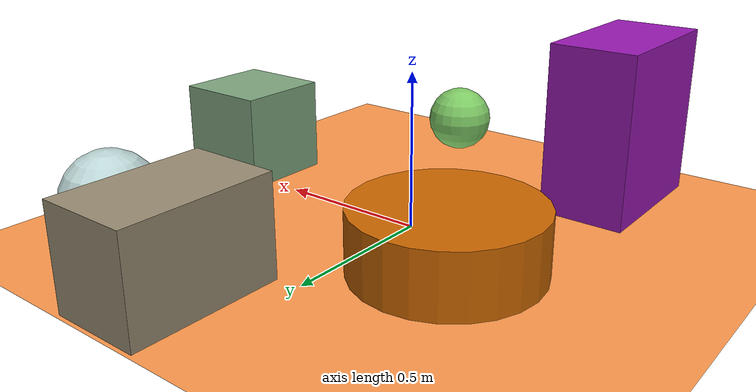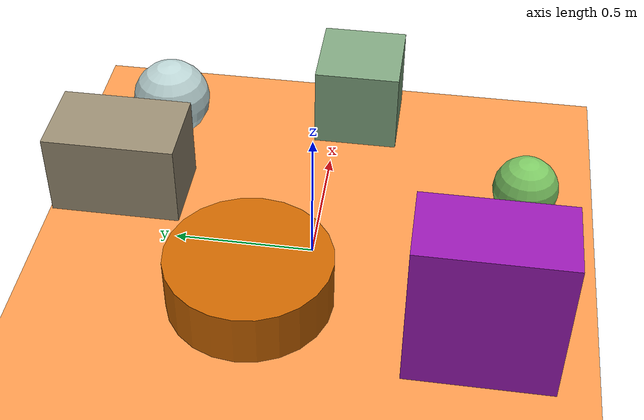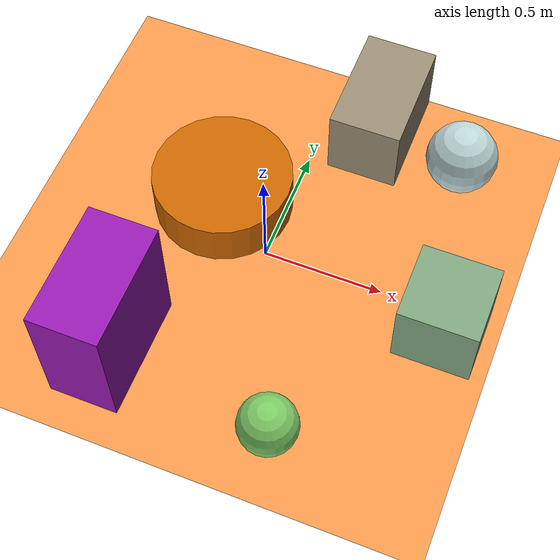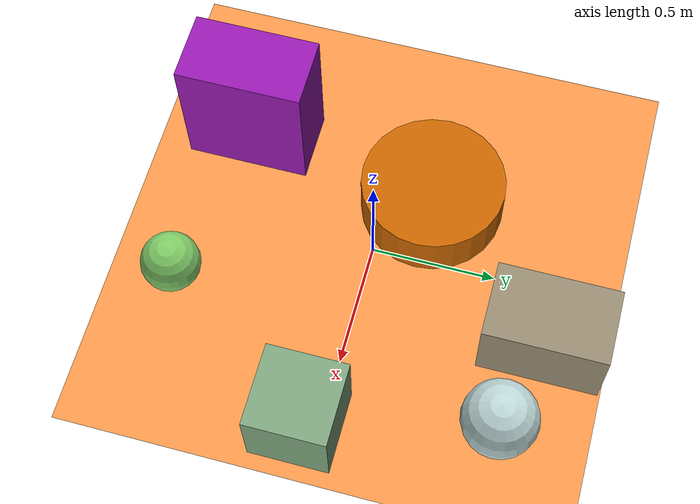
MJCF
<mujoco>
   <asset>
<texture type="skybox" builtin="gradient" rgb1="0.9 0.6 0.2" rgb2="0.8 1.0 0.5" width="256" height="256"/>
<texture name="flat_0" builtin="flat" rgb1="0.5 0.8 0.4" rgb2="0.5 0.8 0.4"  width="200" height="200"/>
<texture name="flat_1" builtin="flat" rgb1="0.6 0.1 0.7" rgb2="0.6 0.1 0.7"  width="200" height="200"/>
<texture name="checker_2" builtin="checker" type="2d" rgb1="0.6 0.7 0.8" rgb2="0.9 1.0 0.9" width="200" height="200"/>
<texture name="flat_3" builtin="flat" rgb1="0.8 0.4 0.0" rgb2="0.8 0.4 0.0"  width="200" height="200"/>
<texture name="gradient_4" builtin="gradient" rgb1="0.6 1.0 0.9" rgb2="0.4 0.3 0.1" width="200" height="200"/>
<texture name="checker_5" builtin="checker" type="2d" rgb1="0.9 0.2 0.7" rgb2="0.3 0.9 0.2" width="200" height="200"/><material name="flat_0_mat" reflectance="0" texture="flat_0" texuniform="true"/>
<material name="flat_1_mat" reflectance="0" texture="flat_1" texuniform="true"/>
<material name="checker_2_mat" reflectance="0" texrepeat="5 5" texture="checker_2" texuniform="false" />
<material name="flat_3_mat" reflectance="0" texture="flat_3" texuniform="true"/>
<material name="gradient_4_mat" reflectance="0" texture="gradient_4" texuniform="true"/>
<material name="checker_5_mat" reflectance="0" texrepeat="4 4" texture="checker_5" texuniform="false" />
   </asset>

   <worldbody>
      <light diffuse=".9 .9 .9" pos="0 0 3" dir="0 0 -1"/>
     <geom type="plane" size="1 1 0.1" rgba="1.0 0.6 0.3 1"/>
<geom type="sphere" pos="0.31 -0.74 0.12" size="0.12 0.12 0.12" material="flat_0_mat" />
<geom type="box" pos="-0.4 -0.61 0.28" size="0.14 0.25 0.28" material="flat_1_mat" />
<geom type="sphere" pos="0.62 0.65 0.15" size="0.15 0.15 0.15" material="checker_2_mat" />
<geom type="cylinder" pos="-0.26 0.18 0.1" size="0.29 0.1 0.1" material="flat_3_mat" />
<geom type="box" pos="0.78 -0.08 0.16" size="0.16 0.16 0.16" material="gradient_4_mat" />
<geom type="box" pos="0.23 0.75 0.16" size="0.15 0.24 0.16" material="checker_5_mat" /><camera euler="60 0 180" fovy="60" name="camera_a" pos="0 -1.5 1"></camera>   </worldbody>
</mujoco>
